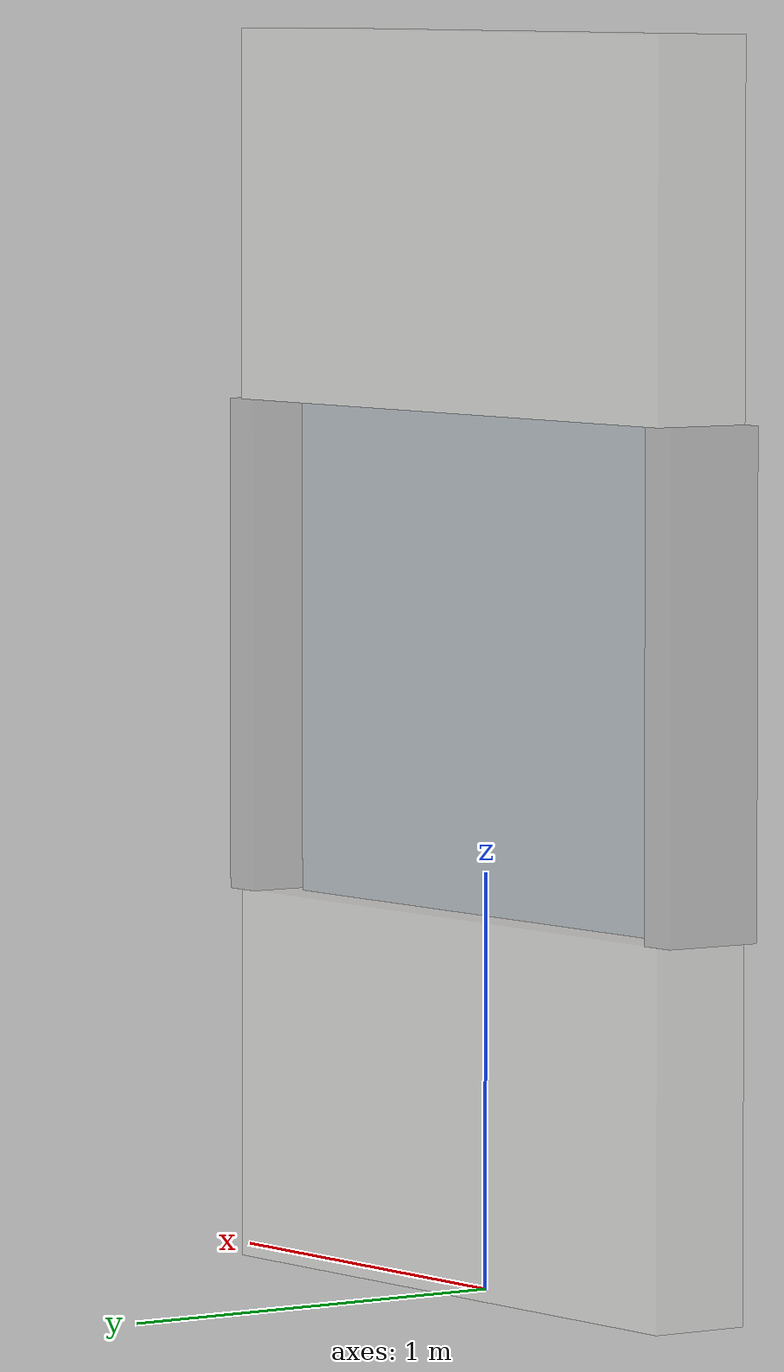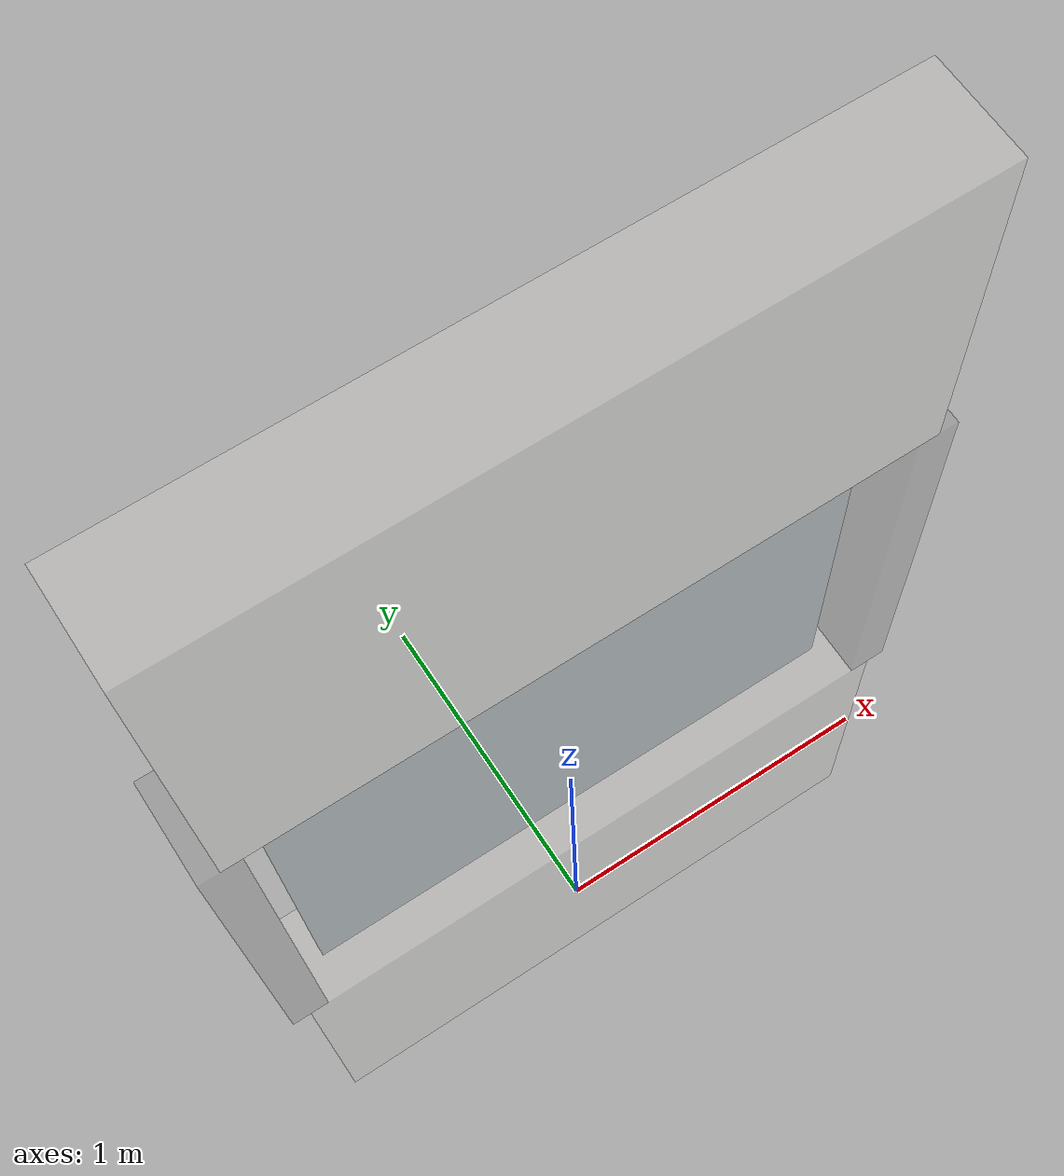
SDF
<?xml version="1.0" ?>
<sdf version="1.6">
  <model name="window_standard">
    <static>true</static>
    <link name="frame_link">
      <!-- Sill (below glass) fill: z 0.0 -> 0.9 -->
      <collision name="sill_col">
        <pose>0 0 0.45 0 0 0</pose>
        <geometry><box><size>1.7 0.25 0.9</size></box></geometry>
      </collision>
      <visual name="sill_vis">
        <pose>0 0 0.45 0 0 0</pose>
        <geometry><box><size>1.7 0.25 0.9</size></box></geometry>
        <material><ambient>0.85 0.84 0.80 1</ambient><diffuse>0.92 0.91 0.87 1</diffuse><specular>0.05 0.05 0.05 1</specular></material>
        <transparency>0.85</transparency>
      </visual>

      <!-- Header (above glass): z 2.1 -> 3.0 -->
      <collision name="header_col">
        <pose>0 0 2.55 0 0 0</pose>
        <geometry><box><size>1.7 0.25 0.9</size></box></geometry>
      </collision>
      <visual name="header_vis">
        <pose>0 0 2.55 0 0 0</pose>
        <geometry><box><size>1.7 0.25 0.9</size></box></geometry>
        <material><ambient>0.85 0.84 0.80 1</ambient><diffuse>0.92 0.91 0.87 1</diffuse><specular>0.05 0.05 0.05 1</specular></material>
        <transparency>0.85</transparency>
      </visual>

      <!-- Left mullion -->
      <collision name="mull_left_col">
        <pose>-0.85 0 1.5 0 0 0</pose>
        <geometry><box><size>0.10 0.25 1.2</size></box></geometry>
      </collision>
      <visual name="mull_left_vis">
        <pose>-0.85 0 1.5 0 0 0</pose>
        <geometry><box><size>0.10 0.25 1.2</size></box></geometry>
        <material><ambient>0.30 0.30 0.32 1</ambient><diffuse>0.38 0.38 0.40 1</diffuse><specular>0.25 0.25 0.27 1</specular></material>
        <transparency>0.85</transparency>
      </visual>
      <!-- Right mullion -->
      <collision name="mull_right_col">
        <pose>0.85 0 1.5 0 0 0</pose>
        <geometry><box><size>0.10 0.25 1.2</size></box></geometry>
      </collision>
      <visual name="mull_right_vis">
        <pose>0.85 0 1.5 0 0 0</pose>
        <geometry><box><size>0.10 0.25 1.2</size></box></geometry>
        <material><ambient>0.30 0.30 0.32 1</ambient><diffuse>0.38 0.38 0.40 1</diffuse><specular>0.25 0.25 0.27 1</specular></material>
        <transparency>0.85</transparency>
      </visual>
    </link>

    <!-- ===== GLASS (visual only) ===== -->
    <link name="glass_link">
      <pose>0 0 1.5 0 0 0</pose>
      <visual name="glass_vis">
        <geometry><box><size>1.5 0.03 1.2</size></box></geometry>
        <material>
          <!-- Cool tinted transparent glass -->
          <ambient>0.35 0.45 0.50 0.30</ambient>
          <diffuse>0.45 0.55 0.60 0.30</diffuse>
          <specular>0.70 0.70 0.72 0.30</specular>
        </material>
        <transparency>0.7</transparency>
      </visual>
    </link>
  </model>
</sdf>
